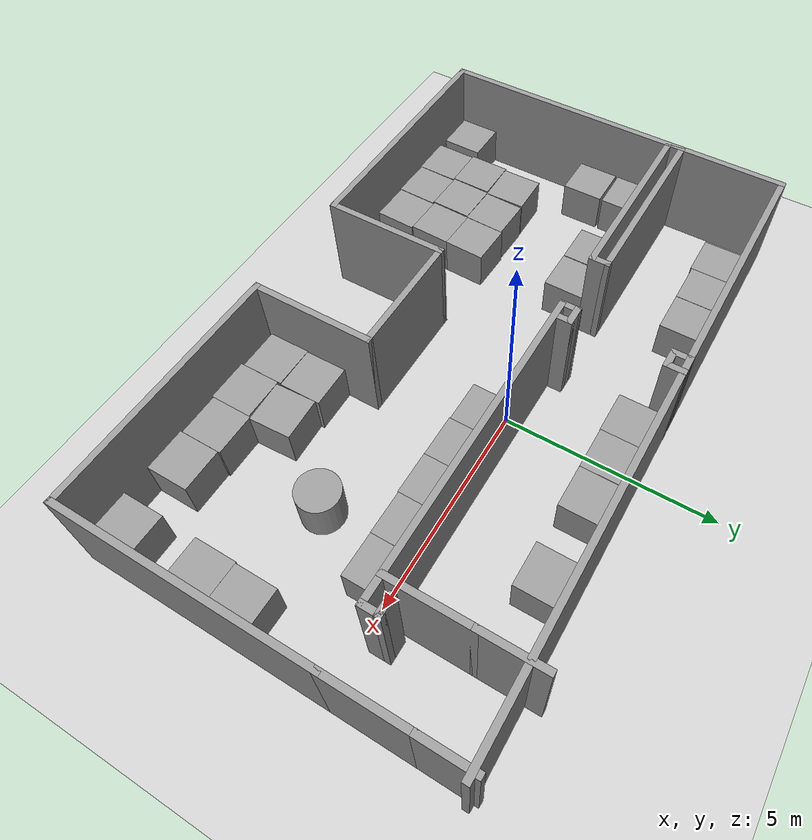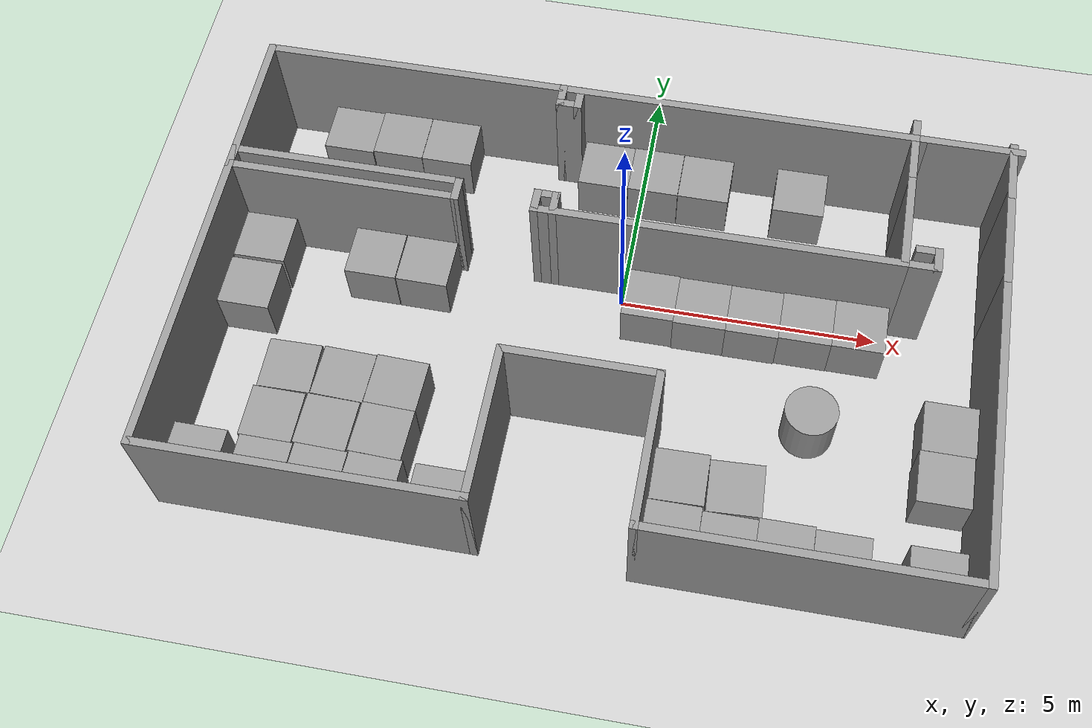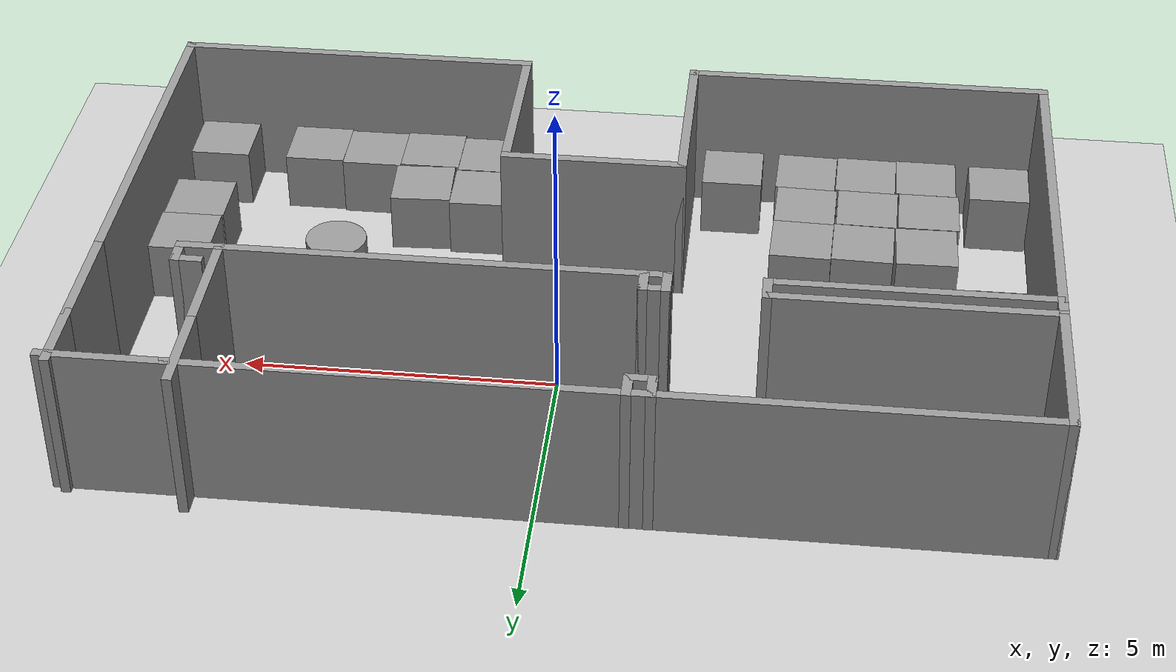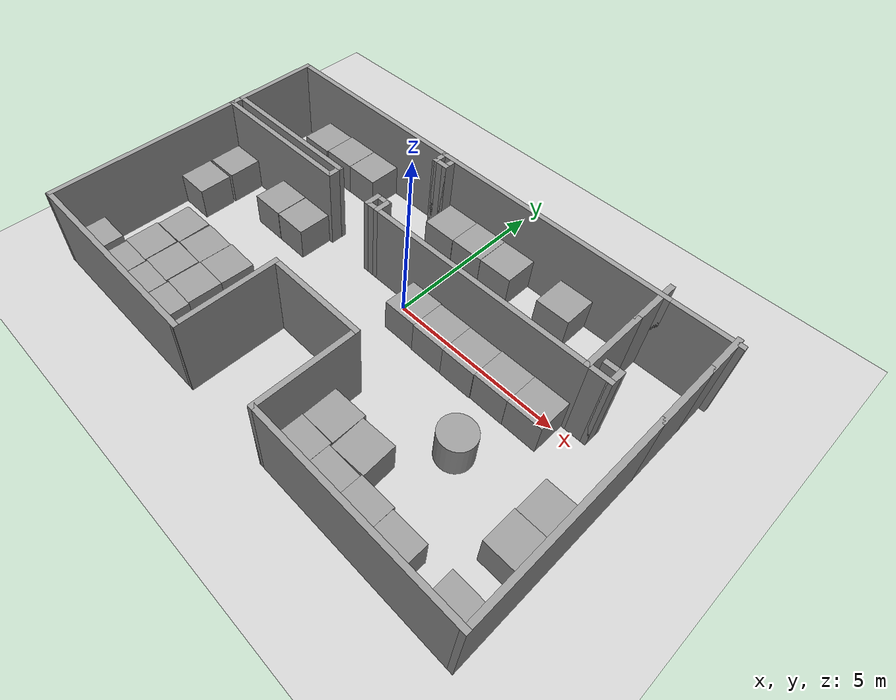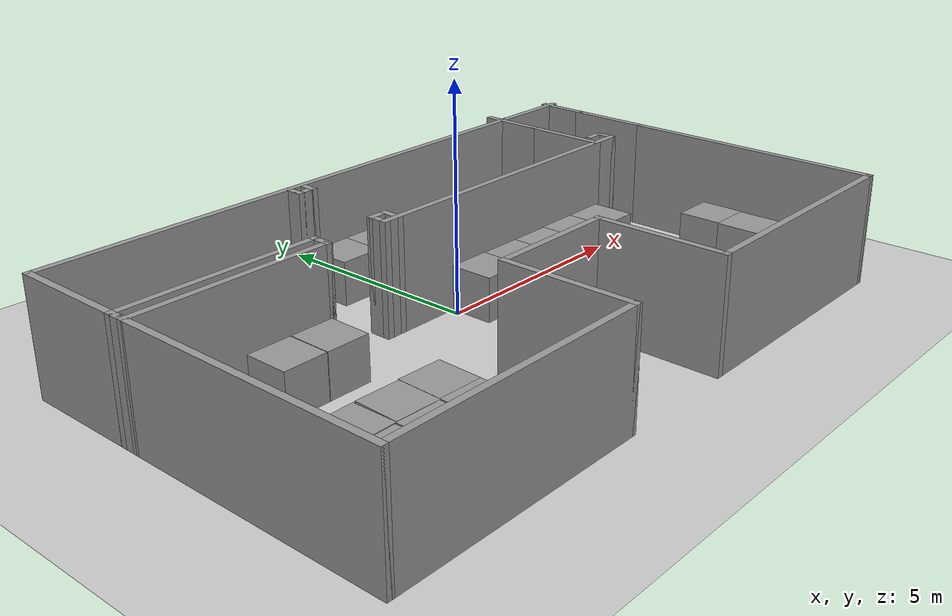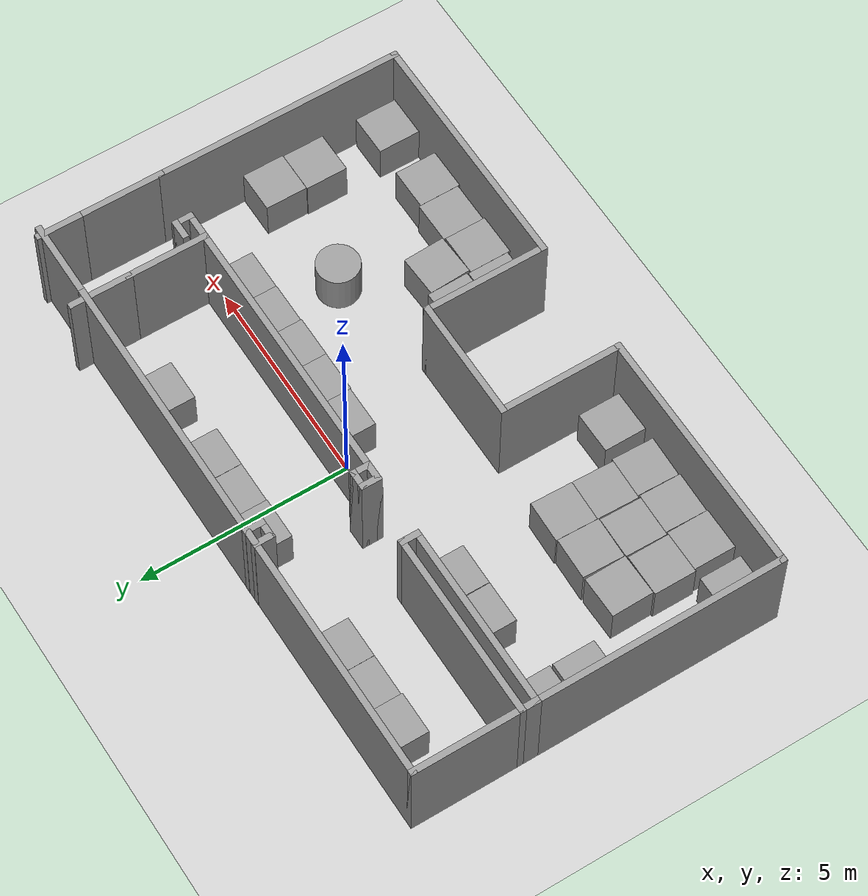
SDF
<sdf version="1.6">
 <world name="default">
  <light name="sun" type="directional">
   <pose>0 0 15 0 -0 0</pose>
   <diffuse>1 1 1 1</diffuse>
   <specular>0.1 0.1 0.1 1</specular>
   <attenuation>
    <range>1000</range>
    <constant>0.9</constant>
    <linear>0.01</linear>
    <quadratic>0.001</quadratic>
   </attenuation>
   <direction>-0.5 0.5 -1</direction>
  </light>
  <model name="ground_plane">
   <static>1</static>
   <link name="link">
    <collision name="collision">
     <geometry><plane><normal>0 0 1</normal><size>100 100</size></plane></geometry>
     <surface><friction><ode><mu>100</mu><mu2>50</mu2></ode></friction></surface>
    </collision>
    <visual name="visual">
     <transparency>1</transparency>
     <cast_shadows>0</cast_shadows>
     <geometry><plane><normal>0 0 1</normal><size>100 100</size></plane></geometry>
     <material>
      <script><uri>file://media/materials/scripts/gazebo.material</uri><name>Gazebo/Grey</name></script>
     </material>
    </visual>
   </link>
  </model>
  <gravity>0 0 -9.8</gravity>
  <magnetic_field>6e-06 2.3e-05 -4.2e-05</magnetic_field>
  <atmosphere type="adiabatic"/>
  <physics name="default_physics" default="0" type="ode">
   <max_step_size>0.001</max_step_size>
   <real_time_factor>1</real_time_factor>
   <real_time_update_rate>1000</real_time_update_rate>
  </physics>
  <scene><ambient>0.4 0.4 0.4 1</ambient><background>0.7 0.7 0.7 1</background><shadows>1</shadows></scene>
  <spherical_coordinates>
   <surface_model>EARTH_WGS84</surface_model>
   <latitude_deg>0</latitude_deg>
   <longitude_deg>0</longitude_deg>
   <elevation>0</elevation>
   <heading_deg>0</heading_deg>
  </spherical_coordinates>
  <model name="meine_0">
   <pose>-0.21781 -1.03305 0 0 -0 0</pose>
   <link name="Wall_0">
    <collision name="Wall_0_Collision">
     <geometry><box><size>6 0.15 2.5</size></box></geometry>
     <pose>0 0 1.25 0 -0 0</pose>
    </collision>
    <visual name="Wall_0_Visual">
     <pose>0 0 1.25 0 -0 0</pose>
     <geometry><box><size>6 0.15 2.5</size></box></geometry>
     <material>
      <script><uri>file://media/materials/scripts/gazebo.material</uri><name>Gazebo/Grey</name></script>
      <ambient>1 1 1 1</ambient>
     </material>
    </visual>
    <pose>-7.35 -1.6 0 0 0 -1.5708</pose>
   </link>
   <link name="Wall_1">
    <collision name="Wall_1_Collision">
     <geometry><box><size>6 0.15 2.5</size></box></geometry>
     <pose>0 0 1.25 0 -0 0</pose>
    </collision>
    <visual name="Wall_1_Visual">
     <pose>0 0 1.25 0 -0 0</pose>
     <geometry><box><size>6 0.15 2.5</size></box></geometry>
     <material>
      <script><uri>file://media/materials/scripts/gazebo.material</uri><name>Gazebo/Grey</name></script>
      <ambient>1 1 1 1</ambient>
     </material>
    </visual>
    <pose>-4.425 -4.525 0 0 -0 0</pose>
   </link>
   <link name="Wall_10">
    <collision name="Wall_10_Collision">
     <geometry><box><size>0.75 0.15 2.5</size></box></geometry>
     <pose>0 0 1.25 0 -0 0</pose>
    </collision>
    <visual name="Wall_10_Visual">
     <pose>0 0 1.25 0 -0 0</pose>
     <geometry><box><size>0.75 0.15 2.5</size></box></geometry>
     <material>
      <script><uri>file://media/materials/scripts/gazebo.material</uri><name>Gazebo/Grey</name></script>
      <ambient>1 1 1 1</ambient>
     </material>
    </visual>
    <pose>5.65 1.325 0 0 -0 0</pose>
   </link>
   <link name="Wall_11">
    <collision name="Wall_11_Collision">
     <geometry><box><size>0.5 0.15 2.5</size></box></geometry>
     <pose>0 0 1.25 0 -0 0</pose>
    </collision>
    <visual name="Wall_11_Visual">
     <pose>0 0 1.25 0 -0 0</pose>
     <geometry><box><size>0.5 0.15 2.5</size></box></geometry>
     <material>
      <script><uri>file://media/materials/scripts/gazebo.material</uri><name>Gazebo/Grey</name></script>
      <ambient>1 1 1 1</ambient>
     </material>
    </visual>
    <pose>5.95 1.5 0 0 -0 1.5708</pose>
   </link>
   <link name="Wall_12">
    <collision name="Wall_12_Collision">
     <geometry><box><size>0.5 0.15 2.5</size></box></geometry>
     <pose>0 0 1.25 0 -0 0</pose>
    </collision>
    <visual name="Wall_12_Visual">
     <pose>0 0 1.25 0 -0 0</pose>
     <geometry><box><size>0.5 0.15 2.5</size></box></geometry>
     <material>
      <script><uri>file://media/materials/scripts/gazebo.material</uri><name>Gazebo/Grey</name></script>
      <ambient>1 1 1 1</ambient>
     </material>
    </visual>
    <pose>5.775 1.675 0 0 -0 3.14159</pose>
   </link>
   <link name="Wall_14">
    <collision name="Wall_14_Collision">
     <geometry><box><size>7 0.15 2.5</size></box></geometry>
     <pose>0 0 1.25 0 -0 0</pose>
    </collision>
    <visual name="Wall_14_Visual">
     <pose>0 0 1.25 0 -0 0</pose>
     <geometry><box><size>7 0.15 2.5</size></box></geometry>
     <material>
      <script><uri>file://media/materials/scripts/gazebo.material</uri><name>Gazebo/Grey</name></script>
      <ambient>1 1 1 1</ambient>
     </material>
    </visual>
    <pose>1.925 1.325 0 0 -0 3.14159</pose>
   </link>
   <link name="Wall_16">
    <collision name="Wall_16_Collision">
     <geometry><box><size>4.5 0.15 2.5</size></box></geometry>
     <pose>0 0 1.25 0 -0 0</pose>
    </collision>
    <visual name="Wall_16_Visual">
     <pose>0 0 1.25 0 -0 0</pose>
     <geometry><box><size>4.5 0.15 2.5</size></box></geometry>
     <material>
      <script><uri>file://media/materials/scripts/gazebo.material</uri><name>Gazebo/Grey</name></script>
      <ambient>1 1 1 1</ambient>
     </material>
    </visual>
    <pose>-5.175 1.325 0 0 -0 0</pose>
   </link>
   <link name="Wall_17">
    <collision name="Wall_17_Collision">
     <geometry><box><size>0.5 0.15 2.5</size></box></geometry>
     <pose>0 0 1.25 0 -0 0</pose>
    </collision>
    <visual name="Wall_17_Visual">
     <pose>0 0 1.25 0 -0 0</pose>
     <geometry><box><size>0.5 0.15 2.5</size></box></geometry>
     <material>
      <script><uri>file://media/materials/scripts/gazebo.material</uri><name>Gazebo/Grey</name></script>
      <ambient>1 1 1 1</ambient>
     </material>
    </visual>
    <pose>-3 1.5 0 0 -0 1.5708</pose>
   </link>
   <link name="Wall_18">
    <collision name="Wall_18_Collision">
     <geometry><box><size>4.5 0.15 2.5</size></box></geometry>
     <pose>0 0 1.25 0 -0 0</pose>
    </collision>
    <visual name="Wall_18_Visual">
     <pose>0 0 1.25 0 -0 0</pose>
     <geometry><box><size>4.5 0.15 2.5</size></box></geometry>
     <material>
      <script><uri>file://media/materials/scripts/gazebo.material</uri><name>Gazebo/Grey</name></script>
      <ambient>1 1 1 1</ambient>
     </material>
    </visual>
    <pose>-5.175 1.675 0 0 -0 3.14159</pose>
   </link>
   <link name="Wall_19">
    <collision name="Wall_19_Collision">
     <geometry><box><size>0.5 0.15 2.5</size></box></geometry>
     <pose>0 0 1.25 0 -0 0</pose>
    </collision>
    <visual name="Wall_19_Visual">
     <pose>0 0 1.25 0 -0 0</pose>
     <geometry><box><size>0.5 0.15 2.5</size></box></geometry>
     <material>
      <script><uri>file://media/materials/scripts/gazebo.material</uri><name>Gazebo/Grey</name></script>
      <ambient>1 1 1 1</ambient>
     </material>
    </visual>
    <pose>-7.35 1.5 0 0 0 -1.5708</pose>
   </link>
   <link name="Wall_2">
    <collision name="Wall_2_Collision">
     <geometry><box><size>3 0.15 2.5</size></box></geometry>
     <pose>0 0 1.25 0 -0 0</pose>
    </collision>
    <visual name="Wall_2_Visual">
     <pose>0 0 1.25 0 -0 0</pose>
     <geometry><box><size>3 0.15 2.5</size></box></geometry>
     <material>
      <script><uri>file://media/materials/scripts/gazebo.material</uri><name>Gazebo/Grey</name></script>
      <ambient>1 1 1 1</ambient>
     </material>
    </visual>
    <pose>-1.5 -3.1 0 0 -0 1.5708</pose>
   </link>
   <link name="Wall_21">
    <collision name="Wall_21_Collision">
     <geometry><box><size>3 0.15 2.5</size></box></geometry>
     <pose>0 0 1.25 0 -0 0</pose>
    </collision>
    <visual name="Wall_21_Visual">
     <pose>0 0 1.25 0 -0 0</pose>
     <geometry><box><size>3 0.15 2.5</size></box></geometry>
     <material>
      <script><uri>file://media/materials/scripts/gazebo.material</uri><name>Gazebo/Grey</name></script>
      <ambient>1 1 1 1</ambient>
     </material>
    </visual>
    <pose>-7.35 2.75 0 0 -0 1.5708</pose>
   </link>
   <link name="Wall_22">
    <collision name="Wall_22_Collision">
     <geometry><box><size>13 0.15 2.5</size></box></geometry>
     <pose>0 0 1.25 0 -0 0</pose>
    </collision>
    <visual name="Wall_22_Visual">
     <pose>0 0 1.25 0 -0 0</pose>
     <geometry><box><size>13 0.15 2.5</size></box></geometry>
     <material>
      <script><uri>file://media/materials/scripts/gazebo.material</uri><name>Gazebo/Grey</name></script>
      <ambient>1 1 1 1</ambient>
     </material>
    </visual>
    <pose>-0.925 4.175 0 0 -0 0</pose>
   </link>
   <link name="Wall_24">
    <collision name="Wall_24_Collision">
     <geometry><box><size>2 0.15 2.5</size></box></geometry>
     <pose>0 0 1.25 0 -0 0</pose>
    </collision>
    <visual name="Wall_24_Visual">
     <pose>0 0 1.25 0 -0 0</pose>
     <geometry><box><size>2 0.15 2.5</size></box></geometry>
     <material>
      <script><uri>file://media/materials/scripts/gazebo.material</uri><name>Gazebo/Grey</name></script>
      <ambient>1 1 1 1</ambient>
     </material>
    </visual>
    <pose>6.425 4.175 0 0 -0 0</pose>
   </link>
   <link name="Wall_26">
    <collision name="Wall_26_Collision">
     <geometry><box><size>1.25 0.15 2.5</size></box></geometry>
     <pose>0 0 1.25 0 -0 0</pose>
    </collision>
    <visual name="Wall_26_Visual">
     <pose>0 0 1.25 0 -0 0</pose>
     <geometry><box><size>1.25 0.15 2.5</size></box></geometry>
     <material>
      <script><uri>file://media/materials/scripts/gazebo.material</uri><name>Gazebo/Grey</name></script>
      <ambient>1 1 1 1</ambient>
     </material>
    </visual>
    <pose>7.2 3.725 0 0 -0 1.5708</pose>
   </link>
   <link name="Wall_28">
    <collision name="Wall_28_Collision">
     <geometry><box><size>1.5 0.15 2.5</size></box></geometry>
     <pose>0 0 1.25 0 -0 0</pose>
    </collision>
    <visual name="Wall_28_Visual">
     <pose>0 0 1.25 0 -0 0</pose>
     <geometry><box><size>1.5 0.15 2.5</size></box></geometry>
     <material>
      <script><uri>file://media/materials/scripts/gazebo.material</uri><name>Gazebo/Grey</name></script>
      <ambient>1 1 1 1</ambient>
     </material>
    </visual>
    <pose>5.35 3.85 0 0 -0 1.5708</pose>
   </link>
   <link name="Wall_3">
    <collision name="Wall_3_Collision">
     <geometry><box><size>3 0.15 2.5</size></box></geometry>
     <pose>0 0 1.25 0 -0 0</pose>
    </collision>
    <visual name="Wall_3_Visual">
     <pose>0 0 1.25 0 -0 0</pose>
     <geometry><box><size>3 0.15 2.5</size></box></geometry>
     <material>
      <script><uri>file://media/materials/scripts/gazebo.material</uri><name>Gazebo/Grey</name></script>
      <ambient>1 1 1 1</ambient>
     </material>
    </visual>
    <pose>-0.075 -1.675 0 0 -0 0</pose>
   </link>
   <link name="Wall_30">
    <collision name="Wall_30_Collision">
     <geometry><box><size>0.5 0.15 2.5</size></box></geometry>
     <pose>0 0 1.25 0 -0 0</pose>
    </collision>
    <visual name="Wall_30_Visual">
     <pose>0 0 1.25 0 -0 0</pose>
     <geometry><box><size>0.5 0.15 2.5</size></box></geometry>
     <material>
      <script><uri>file://media/materials/scripts/gazebo.material</uri><name>Gazebo/Grey</name></script>
      <ambient>1 1 1 1</ambient>
     </material>
    </visual>
    <pose>-1.5 1.5 0 0 -0 1.5708</pose>
   </link>
   <link name="Wall_31">
    <collision name="Wall_31_Collision">
     <geometry><box><size>0.5 0.15 2.5</size></box></geometry>
     <pose>0 0 1.25 0 -0 0</pose>
    </collision>
    <visual name="Wall_31_Visual">
     <pose>0 0 1.25 0 -0 0</pose>
     <geometry><box><size>0.5 0.15 2.5</size></box></geometry>
     <material>
      <script><uri>file://media/materials/scripts/gazebo.material</uri><name>Gazebo/Grey</name></script>
      <ambient>1 1 1 1</ambient>
     </material>
    </visual>
    <pose>-1.325 1.675 0 0 -0 0</pose>
   </link>
   <link name="Wall_32">
    <collision name="Wall_32_Collision">
     <geometry><box><size>0.5 0.15 2.5</size></box></geometry>
     <pose>0 0 1.25 0 -0 0</pose>
    </collision>
    <visual name="Wall_32_Visual">
     <pose>0 0 1.25 0 -0 0</pose>
     <geometry><box><size>0.5 0.15 2.5</size></box></geometry>
     <material>
      <script><uri>file://media/materials/scripts/gazebo.material</uri><name>Gazebo/Grey</name></script>
      <ambient>1 1 1 1</ambient>
     </material>
    </visual>
    <pose>-1.15 1.5 0 0 0 -1.5708</pose>
   </link>
   <link name="Wall_34">
    <collision name="Wall_34_Collision">
     <geometry><box><size>0.5 0.15 2.5</size></box></geometry>
     <pose>0 0 1.25 0 -0 0</pose>
    </collision>
    <visual name="Wall_34_Visual">
     <pose>0 0 1.25 0 -0 0</pose>
     <geometry><box><size>0.5 0.15 2.5</size></box></geometry>
     <material>
      <script><uri>file://media/materials/scripts/gazebo.material</uri><name>Gazebo/Grey</name></script>
      <ambient>1 1 1 1</ambient>
     </material>
    </visual>
    <pose>-1.48427 4.00389 0 0 0 -1.5708</pose>
   </link>
   <link name="Wall_35">
    <collision name="Wall_35_Collision">
     <geometry><box><size>0.5 0.15 2.5</size></box></geometry>
     <pose>0 0 1.25 0 -0 0</pose>
    </collision>
    <visual name="Wall_35_Visual">
     <pose>0 0 1.25 0 -0 0</pose>
     <geometry><box><size>0.5 0.15 2.5</size></box></geometry>
     <material>
      <script><uri>file://media/materials/scripts/gazebo.material</uri><name>Gazebo/Grey</name></script>
      <ambient>1 1 1 1</ambient>
     </material>
    </visual>
    <pose>-1.30927 3.82889 0 0 -0 0</pose>
   </link>
   <link name="Wall_36">
    <collision name="Wall_36_Collision">
     <geometry><box><size>0.5 0.15 2.5</size></box></geometry>
     <pose>0 0 1.25 0 -0 0</pose>
    </collision>
    <visual name="Wall_36_Visual">
     <pose>0 0 1.25 0 -0 0</pose>
     <geometry><box><size>0.5 0.15 2.5</size></box></geometry>
     <material>
      <script><uri>file://media/materials/scripts/gazebo.material</uri><name>Gazebo/Grey</name></script>
      <ambient>1 1 1 1</ambient>
     </material>
    </visual>
    <pose>-1.13427 4.00389 0 0 -0 1.5708</pose>
   </link>
   <link name="Wall_4">
    <collision name="Wall_4_Collision">
     <geometry><box><size>3 0.15 2.5</size></box></geometry>
     <pose>0 0 1.25 0 -0 0</pose>
    </collision>
    <visual name="Wall_4_Visual">
     <pose>0 0 1.25 0 -0 0</pose>
     <geometry><box><size>3 0.15 2.5</size></box></geometry>
     <material>
      <script><uri>file://media/materials/scripts/gazebo.material</uri><name>Gazebo/Grey</name></script>
      <ambient>1 1 1 1</ambient>
     </material>
    </visual>
    <pose>1.35 -3.1 0 0 0 -1.5708</pose>
   </link>
   <link name="Wall_5">
    <collision name="Wall_5_Collision">
     <geometry><box><size>6 0.15 2.5</size></box></geometry>
     <pose>0 0 1.25 0 -0 0</pose>
    </collision>
    <visual name="Wall_5_Visual">
     <pose>0 0 1.25 0 -0 0</pose>
     <geometry><box><size>6 0.15 2.5</size></box></geometry>
     <material>
      <script><uri>file://media/materials/scripts/gazebo.material</uri><name>Gazebo/Grey</name></script>
      <ambient>1 1 1 1</ambient>
     </material>
    </visual>
    <pose>4.275 -4.525 0 0 -0 0</pose>
   </link>
   <link name="Wall_6">
    <collision name="Wall_6_Collision">
     <geometry><box><size>6 0.15 2.5</size></box></geometry>
     <pose>0 0 1.25 0 -0 0</pose>
    </collision>
    <visual name="Wall_6_Visual">
     <pose>0 0 1.25 0 -0 0</pose>
     <geometry><box><size>6 0.15 2.5</size></box></geometry>
     <material>
      <script><uri>file://media/materials/scripts/gazebo.material</uri><name>Gazebo/Grey</name></script>
      <ambient>1 1 1 1</ambient>
     </material>
    </visual>
    <pose>7.2 -1.6 0 0 -0 1.5708</pose>
   </link>
   <link name="Wall_7">
    <collision name="Wall_7_Collision">
     <geometry><box><size>2 0.15 2.5</size></box></geometry>
     <pose>0 0 1.25 0 -0 0</pose>
    </collision>
    <visual name="Wall_7_Visual">
     <pose>0 0 1.25 0 -0 0</pose>
     <geometry><box><size>2 0.15 2.5</size></box></geometry>
     <material>
      <script><uri>file://media/materials/scripts/gazebo.material</uri><name>Gazebo/Grey</name></script>
      <ambient>1 1 1 1</ambient>
     </material>
    </visual>
    <pose>7.2 2.25 0 0 -0 1.5708</pose>
   </link>
   <link name="Wall_9">
    <collision name="Wall_9_Collision">
     <geometry><box><size>2 0.15 2.5</size></box></geometry>
     <pose>0 0 1.25 0 -0 0</pose>
    </collision>
    <visual name="Wall_9_Visual">
     <pose>0 0 1.25 0 -0 0</pose>
     <geometry><box><size>2 0.15 2.5</size></box></geometry>
     <material>
      <script><uri>file://media/materials/scripts/gazebo.material</uri><name>Gazebo/Grey</name></script>
      <ambient>1 1 1 1</ambient>
     </material>
    </visual>
    <pose>5.35 2.25 0 0 0 -1.5708</pose>
   </link>
   <static>1</static>
  </model>
  <model name="unit_box_0">
   <pose>-6.97166 -4.94508 0.499995 -1e-05 0 -0.005943</pose>
   <link name="link">
    <inertial>
     <mass>1</mass>
     <inertia>
      <ixx>0.166667</ixx>
      <ixy>0</ixy>
      <ixz>0</ixz>
      <iyy>0.166667</iyy>
      <iyz>0</iyz>
      <izz>0.166667</izz>
     </inertia>
    </inertial>
    <collision name="collision"><geometry><box><size>1 1 1</size></box></geometry></collision>
    <visual name="visual">
     <geometry><box><size>1 1 1</size></box></geometry>
     <material>
      <script><name>Gazebo/Grey</name><uri>file://media/materials/scripts/gazebo.material</uri></script>
     </material>
    </visual>
   </link>
  </model>
  <model name="unit_box_1">
   <pose>-2.46853 -4.98305 0.499995 -0 -1e-05 -1e-06</pose>
   <link name="link">
    <inertial>
     <mass>1</mass>
     <inertia>
      <ixx>0.166667</ixx>
      <ixy>0</ixy>
      <ixz>0</ixz>
      <iyy>0.166667</iyy>
      <iyz>0</iyz>
      <izz>0.166667</izz>
     </inertia>
    </inertial>
    <collision name="collision"><geometry><box><size>1 1 1</size></box></geometry></collision>
    <visual name="visual">
     <geometry><box><size>1 1 1</size></box></geometry>
     <material>
      <script><name>Gazebo/Grey</name><uri>file://media/materials/scripts/gazebo.material</uri></script>
     </material>
    </visual>
   </link>
  </model>
  <model name="unit_box_2">
   <pose>-5.74197 -4.98009 0.499995 1e-05 -0 -0.004539</pose>
   <link name="link">
    <inertial>
     <mass>1</mass>
     <inertia>
      <ixx>0.166667</ixx>
      <ixy>0</ixy>
      <ixz>0</ixz>
      <iyy>0.166667</iyy>
      <iyz>0</iyz>
      <izz>0.166667</izz>
     </inertia>
    </inertial>
    <collision name="collision"><geometry><box><size>1 1 1</size></box></geometry></collision>
    <visual name="visual">
     <geometry><box><size>1 1 1</size></box></geometry>
     <material>
      <script><name>Gazebo/Grey</name><uri>file://media/materials/scripts/gazebo.material</uri></script>
     </material>
    </visual>
   </link>
  </model>
  <model name="unit_box_3">
   <pose>-4.73221 -4.97177 0.499995 -1e-05 0 -0.0227</pose>
   <link name="link">
    <inertial>
     <mass>1</mass>
     <inertia>
      <ixx>0.166667</ixx>
      <ixy>0</ixy>
      <ixz>0</ixz>
      <iyy>0.166667</iyy>
      <iyz>0</iyz>
      <izz>0.166667</izz>
     </inertia>
    </inertial>
    <collision name="collision"><geometry><box><size>1 1 1</size></box></geometry></collision>
    <visual name="visual">
     <geometry><box><size>1 1 1</size></box></geometry>
     <material>
      <script><name>Gazebo/Grey</name><uri>file://media/materials/scripts/gazebo.material</uri></script>
     </material>
    </visual>
   </link>
  </model>
  <model name="unit_box_4">
   <pose>-3.72231 -4.96753 0.499995 -1e-05 0 -0.030562</pose>
   <link name="link">
    <inertial>
     <mass>1</mass>
     <inertia>
      <ixx>0.166667</ixx>
      <ixy>0</ixy>
      <ixz>0</ixz>
      <iyy>0.166667</iyy>
      <iyz>0</iyz>
      <izz>0.166667</izz>
     </inertia>
    </inertial>
    <collision name="collision"><geometry><box><size>1 1 1</size></box></geometry></collision>
    <visual name="visual">
     <geometry><box><size>1 1 1</size></box></geometry>
     <material>
      <script><name>Gazebo/Grey</name><uri>file://media/materials/scripts/gazebo.material</uri></script>
     </material>
    </visual>
   </link>
  </model>
  <model name="unit_box_5">
   <pose>-5.78342 -3.97978 0.499995 -0 -1e-05 -0.004514</pose>
   <link name="link">
    <inertial>
     <mass>1</mass>
     <inertia>
      <ixx>0.166667</ixx>
      <ixy>0</ixy>
      <ixz>0</ixz>
      <iyy>0.166667</iyy>
      <iyz>0</iyz>
      <izz>0.166667</izz>
     </inertia>
    </inertial>
    <collision name="collision"><geometry><box><size>1 1 1</size></box></geometry></collision>
    <visual name="visual">
     <geometry><box><size>1 1 1</size></box></geometry>
     <material>
      <script><name>Gazebo/Grey</name><uri>file://media/materials/scripts/gazebo.material</uri></script>
     </material>
    </visual>
   </link>
  </model>
  <model name="unit_box_6">
   <pose>-4.76255 -3.97078 0.499995 1e-05 0 -0.022783</pose>
   <link name="link">
    <inertial>
     <mass>1</mass>
     <inertia>
      <ixx>0.166667</ixx>
      <ixy>0</ixy>
      <ixz>0</ixz>
      <iyy>0.166667</iyy>
      <iyz>0</iyz>
      <izz>0.166667</izz>
     </inertia>
    </inertial>
    <collision name="collision"><geometry><box><size>1 1 1</size></box></geometry></collision>
    <visual name="visual">
     <geometry><box><size>1 1 1</size></box></geometry>
     <material>
      <script><name>Gazebo/Grey</name><uri>file://media/materials/scripts/gazebo.material</uri></script>
     </material>
    </visual>
   </link>
  </model>
  <model name="unit_box_7">
   <pose>-3.73698 -3.9663 0.499995 -0 1e-05 -0.030922</pose>
   <link name="link">
    <inertial>
     <mass>1</mass>
     <inertia>
      <ixx>0.166667</ixx>
      <ixy>0</ixy>
      <ixz>0</ixz>
      <iyy>0.166667</iyy>
      <iyz>0</iyz>
      <izz>0.166667</izz>
     </inertia>
    </inertial>
    <collision name="collision"><geometry><box><size>1 1 1</size></box></geometry></collision>
    <visual name="visual">
     <geometry><box><size>1 1 1</size></box></geometry>
     <material>
      <script><name>Gazebo/Grey</name><uri>file://media/materials/scripts/gazebo.material</uri></script>
     </material>
    </visual>
   </link>
  </model>
  <model name="unit_box_8">
   <pose>-5.73594 -2.9657 0.499995 -1e-05 0 0.013133</pose>
   <link name="link">
    <inertial>
     <mass>1</mass>
     <inertia>
      <ixx>0.166667</ixx>
      <ixy>0</ixy>
      <ixz>0</ixz>
      <iyy>0.166667</iyy>
      <iyz>0</iyz>
      <izz>0.166667</izz>
     </inertia>
    </inertial>
    <collision name="collision"><geometry><box><size>1 1 1</size></box></geometry></collision>
    <visual name="visual">
     <geometry><box><size>1 1 1</size></box></geometry>
     <material>
      <script><name>Gazebo/Grey</name><uri>file://media/materials/scripts/gazebo.material</uri></script>
     </material>
    </visual>
   </link>
  </model>
  <model name="unit_box_9">
   <pose>-4.70726 -2.96445 0.499995 1e-05 -0 -0.030283</pose>
   <link name="link">
    <inertial>
     <mass>1</mass>
     <inertia>
      <ixx>0.166667</ixx>
      <ixy>0</ixy>
      <ixz>0</ixz>
      <iyy>0.166667</iyy>
      <iyz>0</iyz>
      <izz>0.166667</izz>
     </inertia>
    </inertial>
    <collision name="collision"><geometry><box><size>1 1 1</size></box></geometry></collision>
    <visual name="visual">
     <geometry><box><size>1 1 1</size></box></geometry>
     <material>
      <script><name>Gazebo/Grey</name><uri>file://media/materials/scripts/gazebo.material</uri></script>
     </material>
    </visual>
   </link>
  </model>
  <model name="unit_box_10">
   <pose>-3.70334 -2.96685 0.499995 -0 1e-05 -0.030928</pose>
   <link name="link">
    <inertial>
     <mass>1</mass>
     <inertia>
      <ixx>0.166667</ixx>
      <ixy>0</ixy>
      <ixz>0</ixz>
      <iyy>0.166667</iyy>
      <iyz>0</iyz>
      <izz>0.166667</izz>
     </inertia>
    </inertial>
    <collision name="collision"><geometry><box><size>1 1 1</size></box></geometry></collision>
    <visual name="visual">
     <geometry><box><size>1 1 1</size></box></geometry>
     <material>
      <script><name>Gazebo/Grey</name><uri>file://media/materials/scripts/gazebo.material</uri></script>
     </material>
    </visual>
   </link>
  </model>
  <model name="unit_box_11">
   <pose>-6.98984 -0.293079 0.499995 1e-05 -0 0.005541</pose>
   <link name="link">
    <inertial>
     <mass>1</mass>
     <inertia>
      <ixx>0.166667</ixx>
      <ixy>0</ixy>
      <ixz>0</ixz>
      <iyy>0.166667</iyy>
      <iyz>0</iyz>
      <izz>0.166667</izz>
     </inertia>
    </inertial>
    <collision name="collision"><geometry><box><size>1 1 1</size></box></geometry></collision>
    <visual name="visual">
     <geometry><box><size>1 1 1</size></box></geometry>
     <material>
      <script><name>Gazebo/Grey</name><uri>file://media/materials/scripts/gazebo.material</uri></script>
     </material>
    </visual>
   </link>
  </model>
  <model name="unit_box_12">
   <pose>-6.9928 -1.35288 0.499995 -0 1e-05 -6e-06</pose>
   <link name="link">
    <inertial>
     <mass>1</mass>
     <inertia>
      <ixx>0.166667</ixx>
      <ixy>0</ixy>
      <ixz>0</ixz>
      <iyy>0.166667</iyy>
      <iyz>0</iyz>
      <izz>0.166667</izz>
     </inertia>
    </inertial>
    <collision name="collision"><geometry><box><size>1 1 1</size></box></geometry></collision>
    <visual name="visual">
     <geometry><box><size>1 1 1</size></box></geometry>
     <material>
      <script><name>Gazebo/Grey</name><uri>file://media/materials/scripts/gazebo.material</uri></script>
     </material>
    </visual>
   </link>
  </model>
  <model name="unit_box_13">
   <pose>-4.78085 -0.283049 0.499996 -7e-06 -0 -2e-06</pose>
   <link name="link">
    <inertial>
     <mass>1</mass>
     <inertia>
      <ixx>0.166667</ixx>
      <ixy>0</ixy>
      <ixz>0</ixz>
      <iyy>0.166667</iyy>
      <iyz>0</iyz>
      <izz>0.166667</izz>
     </inertia>
    </inertial>
    <collision name="collision"><geometry><box><size>1 1 1</size></box></geometry></collision>
    <visual name="visual">
     <geometry><box><size>1 1 1</size></box></geometry>
     <material>
      <script><name>Gazebo/Grey</name><uri>file://media/materials/scripts/gazebo.material</uri></script>
     </material>
    </visual>
   </link>
  </model>
  <model name="unit_box_14">
   <pose>-3.76601 -0.286402 0.499995 0 1e-05 -0.00651</pose>
   <link name="link">
    <inertial>
     <mass>1</mass>
     <inertia>
      <ixx>0.166667</ixx>
      <ixy>0</ixy>
      <ixz>0</ixz>
      <iyy>0.166667</iyy>
      <iyz>0</iyz>
      <izz>0.166667</izz>
     </inertia>
    </inertial>
    <collision name="collision"><geometry><box><size>1 1 1</size></box></geometry></collision>
    <visual name="visual">
     <geometry><box><size>1 1 1</size></box></geometry>
     <material>
      <script><name>Gazebo/Grey</name><uri>file://media/materials/scripts/gazebo.material</uri></script>
     </material>
    </visual>
   </link>
  </model>
  <model name="unit_box_15">
   <pose>0.61129 -0.285668 0.499995 -0 1e-05 -6.2e-05</pose>
   <link name="link">
    <inertial>
     <mass>1</mass>
     <inertia>
      <ixx>0.166667</ixx>
      <ixy>0</ixy>
      <ixz>0</ixz>
      <iyy>0.166667</iyy>
      <iyz>0</iyz>
      <izz>0.166667</izz>
     </inertia>
    </inertial>
    <collision name="collision"><geometry><box><size>1 1 1</size></box></geometry></collision>
    <visual name="visual">
     <geometry><box><size>1 1 1</size></box></geometry>
     <material>
      <script><name>Gazebo/Grey</name><uri>file://media/materials/scripts/gazebo.material</uri></script>
     </material>
    </visual>
   </link>
  </model>
  <model name="unit_box_16">
   <pose>1.61129 -0.305294 0.499995 -0 -1e-05 -4.8e-05</pose>
   <link name="link">
    <inertial>
     <mass>1</mass>
     <inertia>
      <ixx>0.166667</ixx>
      <ixy>0</ixy>
      <ixz>0</ixz>
      <iyy>0.166667</iyy>
      <iyz>0</iyz>
      <izz>0.166667</izz>
     </inertia>
    </inertial>
    <collision name="collision"><geometry><box><size>1 1 1</size></box></geometry></collision>
    <visual name="visual">
     <geometry><box><size>1 1 1</size></box></geometry>
     <material>
      <script><name>Gazebo/Grey</name><uri>file://media/materials/scripts/gazebo.material</uri></script>
     </material>
    </visual>
   </link>
  </model>
  <model name="unit_box_17">
   <pose>2.61131 -0.309269 0.499995 -0 -1e-05 -5.5e-05</pose>
   <link name="link">
    <inertial>
     <mass>1</mass>
     <inertia>
      <ixx>0.166667</ixx>
      <ixy>0</ixy>
      <ixz>0</ixz>
      <iyy>0.166667</iyy>
      <iyz>0</iyz>
      <izz>0.166667</izz>
     </inertia>
    </inertial>
    <collision name="collision"><geometry><box><size>1 1 1</size></box></geometry></collision>
    <visual name="visual">
     <geometry><box><size>1 1 1</size></box></geometry>
     <material>
      <script><name>Gazebo/Grey</name><uri>file://media/materials/scripts/gazebo.material</uri></script>
     </material>
    </visual>
   </link>
  </model>
  <model name="unit_box_18">
   <pose>3.61133 -0.289988 0.499995 0 1e-05 -5.5e-05</pose>
   <link name="link">
    <inertial>
     <mass>1</mass>
     <inertia>
      <ixx>0.166667</ixx>
      <ixy>0</ixy>
      <ixz>0</ixz>
      <iyy>0.166667</iyy>
      <iyz>0</iyz>
      <izz>0.166667</izz>
     </inertia>
    </inertial>
    <collision name="collision"><geometry><box><size>1 1 1</size></box></geometry></collision>
    <visual name="visual">
     <geometry><box><size>1 1 1</size></box></geometry>
     <material>
      <script><name>Gazebo/Grey</name><uri>file://media/materials/scripts/gazebo.material</uri></script>
     </material>
    </visual>
   </link>
  </model>
  <model name="unit_box_19">
   <pose>4.61136 -0.283121 0.499995 -0 1e-05 -8.9e-05</pose>
   <link name="link">
    <inertial>
     <mass>1</mass>
     <inertia>
      <ixx>0.166667</ixx>
      <ixy>0</ixy>
      <ixz>0</ixz>
      <iyy>0.166667</iyy>
      <iyz>0</iyz>
      <izz>0.166667</izz>
     </inertia>
    </inertial>
    <collision name="collision"><geometry><box><size>1 1 1</size></box></geometry></collision>
    <visual name="visual">
     <geometry><box><size>1 1 1</size></box></geometry>
     <material>
      <script><name>Gazebo/Grey</name><uri>file://media/materials/scripts/gazebo.material</uri></script>
     </material>
    </visual>
   </link>
  </model>
  <model name="unit_box_20">
   <pose>-0.732531 2.55478 0.499995 -1e-05 0 0</pose>
   <link name="link">
    <inertial>
     <mass>1</mass>
     <inertia>
      <ixx>0.166667</ixx>
      <ixy>0</ixy>
      <ixz>0</ixz>
      <iyy>0.166667</iyy>
      <iyz>0</iyz>
      <izz>0.166667</izz>
     </inertia>
    </inertial>
    <collision name="collision"><geometry><box><size>1 1 1</size></box></geometry></collision>
    <visual name="visual">
     <geometry><box><size>1 1 1</size></box></geometry>
     <material>
      <script><name>Gazebo/Grey</name><uri>file://media/materials/scripts/gazebo.material</uri></script>
     </material>
    </visual>
   </link>
  </model>
  <model name="unit_box_21">
   <pose>0.267478 2.56693 0.499995 -1e-05 -0 8e-06</pose>
   <link name="link">
    <inertial>
     <mass>1</mass>
     <inertia>
      <ixx>0.166667</ixx>
      <ixy>0</ixy>
      <ixz>0</ixz>
      <iyy>0.166667</iyy>
      <iyz>0</iyz>
      <izz>0.166667</izz>
     </inertia>
    </inertial>
    <collision name="collision"><geometry><box><size>1 1 1</size></box></geometry></collision>
    <visual name="visual">
     <geometry><box><size>1 1 1</size></box></geometry>
     <material>
      <script><name>Gazebo/Grey</name><uri>file://media/materials/scripts/gazebo.material</uri></script>
     </material>
    </visual>
   </link>
  </model>
  <model name="unit_box_22">
   <pose>1.27175 2.56695 0.499995 0 -1e-05 -2e-06</pose>
   <link name="link">
    <inertial>
     <mass>1</mass>
     <inertia>
      <ixx>0.166667</ixx>
      <ixy>0</ixy>
      <ixz>0</ixz>
      <iyy>0.166667</iyy>
      <iyz>0</iyz>
      <izz>0.166667</izz>
     </inertia>
    </inertial>
    <collision name="collision"><geometry><box><size>1 1 1</size></box></geometry></collision>
    <visual name="visual">
     <geometry><box><size>1 1 1</size></box></geometry>
     <material>
      <script><name>Gazebo/Grey</name><uri>file://media/materials/scripts/gazebo.material</uri></script>
     </material>
    </visual>
   </link>
  </model>
  <model name="unit_box_23">
   <pose>3.16324 2.56695 0.499995 0 -1e-05 -2e-06</pose>
   <link name="link">
    <inertial>
     <mass>1</mass>
     <inertia>
      <ixx>0.166667</ixx>
      <ixy>0</ixy>
      <ixz>0</ixz>
      <iyy>0.166667</iyy>
      <iyz>0</iyz>
      <izz>0.166667</izz>
     </inertia>
    </inertial>
    <collision name="collision"><geometry><box><size>1 1 1</size></box></geometry></collision>
    <visual name="visual">
     <geometry><box><size>1 1 1</size></box></geometry>
     <material>
      <script><name>Gazebo/Grey</name><uri>file://media/materials/scripts/gazebo.material</uri></script>
     </material>
    </visual>
   </link>
  </model>
  <model name="unit_box_24">
   <pose>-5.93494 2.53186 0.499995 -1e-05 -0 1e-06</pose>
   <link name="link">
    <inertial>
     <mass>1</mass>
     <inertia>
      <ixx>0.166667</ixx>
      <ixy>0</ixy>
      <ixz>0</ixz>
      <iyy>0.166667</iyy>
      <iyz>0</iyz>
      <izz>0.166667</izz>
     </inertia>
    </inertial>
    <collision name="collision"><geometry><box><size>1 1 1</size></box></geometry></collision>
    <visual name="visual">
     <geometry><box><size>1 1 1</size></box></geometry>
     <material>
      <script><name>Gazebo/Grey</name><uri>file://media/materials/scripts/gazebo.material</uri></script>
     </material>
    </visual>
   </link>
  </model>
  <model name="unit_box_25">
   <pose>-4.93493 2.56695 0.499995 -1e-05 0 -1e-06</pose>
   <link name="link">
    <inertial>
     <mass>1</mass>
     <inertia>
      <ixx>0.166667</ixx>
      <ixy>0</ixy>
      <ixz>0</ixz>
      <iyy>0.166667</iyy>
      <iyz>0</iyz>
      <izz>0.166667</izz>
     </inertia>
    </inertial>
    <collision name="collision"><geometry><box><size>1 1 1</size></box></geometry></collision>
    <visual name="visual">
     <geometry><box><size>1 1 1</size></box></geometry>
     <material>
      <script><name>Gazebo/Grey</name><uri>file://media/materials/scripts/gazebo.material</uri></script>
     </material>
    </visual>
   </link>
  </model>
  <model name="unit_box_26">
   <pose>-3.93199 2.56695 0.499995 -1e-05 0 0</pose>
   <link name="link">
    <inertial>
     <mass>1</mass>
     <inertia>
      <ixx>0.166667</ixx>
      <ixy>0</ixy>
      <ixz>0</ixz>
      <iyy>0.166667</iyy>
      <iyz>0</iyz>
      <izz>0.166667</izz>
     </inertia>
    </inertial>
    <collision name="collision"><geometry><box><size>1 1 1</size></box></geometry></collision>
    <visual name="visual">
     <geometry><box><size>1 1 1</size></box></geometry>
     <material>
      <script><name>Gazebo/Grey</name><uri>file://media/materials/scripts/gazebo.material</uri></script>
     </material>
    </visual>
   </link>
  </model>
  <model name="unit_box_27">
   <pose>1.71579 -3.91074 0.499995 0 -1e-05 0.01644</pose>
   <link name="link">
    <inertial>
     <mass>1</mass>
     <inertia>
      <ixx>0.166667</ixx>
      <ixy>0</ixy>
      <ixz>0</ixz>
      <iyy>0.166667</iyy>
      <iyz>0</iyz>
      <izz>0.166667</izz>
     </inertia>
    </inertial>
    <collision name="collision"><geometry><box><size>1 1 1</size></box></geometry></collision>
    <visual name="visual">
     <geometry><box><size>1 1 1</size></box></geometry>
     <material>
      <script><name>Gazebo/Grey</name><uri>file://media/materials/scripts/gazebo.material</uri></script>
     </material>
    </visual>
   </link>
  </model>
  <model name="unit_box_28">
   <pose>1.70811 -4.92043 0.499995 -0 1e-05 0.001317</pose>
   <link name="link">
    <inertial>
     <mass>1</mass>
     <inertia>
      <ixx>0.166667</ixx>
      <ixy>0</ixy>
      <ixz>0</ixz>
      <iyy>0.166667</iyy>
      <iyz>0</iyz>
      <izz>0.166667</izz>
     </inertia>
    </inertial>
    <collision name="collision"><geometry><box><size>1 1 1</size></box></geometry></collision>
    <visual name="visual">
     <geometry><box><size>1 1 1</size></box></geometry>
     <material>
      <script><name>Gazebo/Grey</name><uri>file://media/materials/scripts/gazebo.material</uri></script>
     </material>
    </visual>
   </link>
  </model>
  <model name="unit_box_29">
   <pose>2.71005 -4.98194 0.499995 -1e-05 0 0.002175</pose>
   <link name="link">
    <inertial>
     <mass>1</mass>
     <inertia>
      <ixx>0.166667</ixx>
      <ixy>0</ixy>
      <ixz>0</ixz>
      <iyy>0.166667</iyy>
      <iyz>0</iyz>
      <izz>0.166667</izz>
     </inertia>
    </inertial>
    <collision name="collision"><geometry><box><size>1 1 1</size></box></geometry></collision>
    <visual name="visual">
     <geometry><box><size>1 1 1</size></box></geometry>
     <material>
      <script><name>Gazebo/Grey</name><uri>file://media/materials/scripts/gazebo.material</uri></script>
     </material>
    </visual>
   </link>
  </model>
  <model name="unit_box_30">
   <pose>2.73196 -3.96022 0.499995 -1e-05 0 0.046439</pose>
   <link name="link">
    <inertial>
     <mass>1</mass>
     <inertia>
      <ixx>0.166667</ixx>
      <ixy>0</ixy>
      <ixz>0</ixz>
      <iyy>0.166667</iyy>
      <iyz>0</iyz>
      <izz>0.166667</izz>
     </inertia>
    </inertial>
    <collision name="collision"><geometry><box><size>1 1 1</size></box></geometry></collision>
    <visual name="visual">
     <geometry><box><size>1 1 1</size></box></geometry>
     <material>
      <script><name>Gazebo/Grey</name><uri>file://media/materials/scripts/gazebo.material</uri></script>
     </material>
    </visual>
   </link>
  </model>
  <model name="unit_box_31">
   <pose>3.71001 -4.93934 0.499995 -1e-05 -0 0.002183</pose>
   <link name="link">
    <inertial>
     <mass>1</mass>
     <inertia>
      <ixx>0.166667</ixx>
      <ixy>0</ixy>
      <ixz>0</ixz>
      <iyy>0.166667</iyy>
      <iyz>0</iyz>
      <izz>0.166667</izz>
     </inertia>
    </inertial>
    <collision name="collision"><geometry><box><size>1 1 1</size></box></geometry></collision>
    <visual name="visual">
     <geometry><box><size>1 1 1</size></box></geometry>
     <material>
      <script><name>Gazebo/Grey</name><uri>file://media/materials/scripts/gazebo.material</uri></script>
     </material>
    </visual>
   </link>
  </model>
  <model name="unit_box_32">
   <pose>4.7113 -4.98113 0.499995 1e-05 -0 0.002034</pose>
   <link name="link">
    <inertial>
     <mass>1</mass>
     <inertia>
      <ixx>0.166667</ixx>
      <ixy>0</ixy>
      <ixz>0</ixz>
      <iyy>0.166667</iyy>
      <iyz>0</iyz>
      <izz>0.166667</izz>
     </inertia>
    </inertial>
    <collision name="collision"><geometry><box><size>1 1 1</size></box></geometry></collision>
    <visual name="visual">
     <geometry><box><size>1 1 1</size></box></geometry>
     <material>
      <script><name>Gazebo/Grey</name><uri>file://media/materials/scripts/gazebo.material</uri></script>
     </material>
    </visual>
   </link>
  </model>
  <model name="unit_box_33">
   <pose>6.3661 -4.98304 0.499995 -0 -1e-05 5e-06</pose>
   <link name="link">
    <inertial>
     <mass>1</mass>
     <inertia>
      <ixx>0.166667</ixx>
      <ixy>0</ixy>
      <ixz>0</ixz>
      <iyy>0.166667</iyy>
      <iyz>0</iyz>
      <izz>0.166667</izz>
     </inertia>
    </inertial>
    <collision name="collision"><geometry><box><size>1 1 1</size></box></geometry></collision>
    <visual name="visual">
     <geometry><box><size>1 1 1</size></box></geometry>
     <material>
      <script><name>Gazebo/Grey</name><uri>file://media/materials/scripts/gazebo.material</uri></script>
     </material>
    </visual>
   </link>
  </model>
  <model name="unit_box_34">
   <pose>6.3843 -3.13596 0.499995 -1e-05 -0 0.000391</pose>
   <link name="link">
    <inertial>
     <mass>1</mass>
     <inertia>
      <ixx>0.166667</ixx>
      <ixy>0</ixy>
      <ixz>0</ixz>
      <iyy>0.166667</iyy>
      <iyz>0</iyz>
      <izz>0.166667</izz>
     </inertia>
    </inertial>
    <collision name="collision"><geometry><box><size>1 1 1</size></box></geometry></collision>
    <visual name="visual">
     <geometry><box><size>1 1 1</size></box></geometry>
     <material>
      <script><name>Gazebo/Grey</name><uri>file://media/materials/scripts/gazebo.material</uri></script>
     </material>
    </visual>
   </link>
  </model>
  <model name="unit_box_35">
   <pose>6.40716 -2.13569 0.499995 1e-05 -0 3.3e-05</pose>
   <link name="link">
    <inertial>
     <mass>1</mass>
     <inertia>
      <ixx>0.166667</ixx>
      <ixy>0</ixy>
      <ixz>0</ixz>
      <iyy>0.166667</iyy>
      <iyz>0</iyz>
      <izz>0.166667</izz>
     </inertia>
    </inertial>
    <collision name="collision"><geometry><box><size>1 1 1</size></box></geometry></collision>
    <visual name="visual">
     <geometry><box><size>1 1 1</size></box></geometry>
     <material>
      <script><name>Gazebo/Grey</name><uri>file://media/materials/scripts/gazebo.material</uri></script>
     </material>
    </visual>
   </link>
  </model>
  <model name="unit_cylinder_0">
   <pose>3.89357 -2.19774 0.499997 3e-06 4e-06 -0</pose>
   <link name="link">
    <inertial>
     <mass>1</mass>
     <inertia><ixx>0.145833</ixx><ixy>0</ixy><ixz>0</ixz><iyy>0.145833</iyy><iyz>0</iyz><izz>0.125</izz></inertia>
    </inertial>
    <collision name="collision">
     <geometry><cylinder><radius>0.5</radius><length>1</length></cylinder></geometry>
    </collision>
    <visual name="visual">
     <geometry><cylinder><radius>0.5</radius><length>1</length></cylinder></geometry>
     <material>
      <script><name>Gazebo/Grey</name><uri>file://media/materials/scripts/gazebo.material</uri></script>
     </material>
    </visual>
   </link>
  </model>
 </world>
</sdf>
